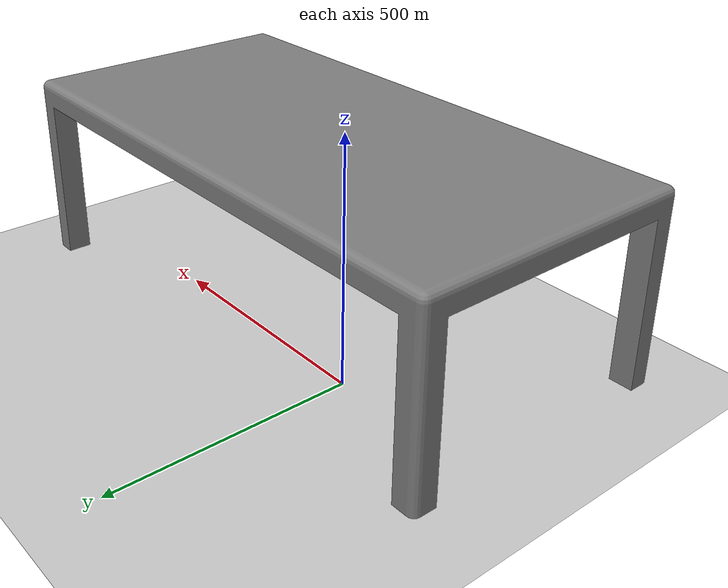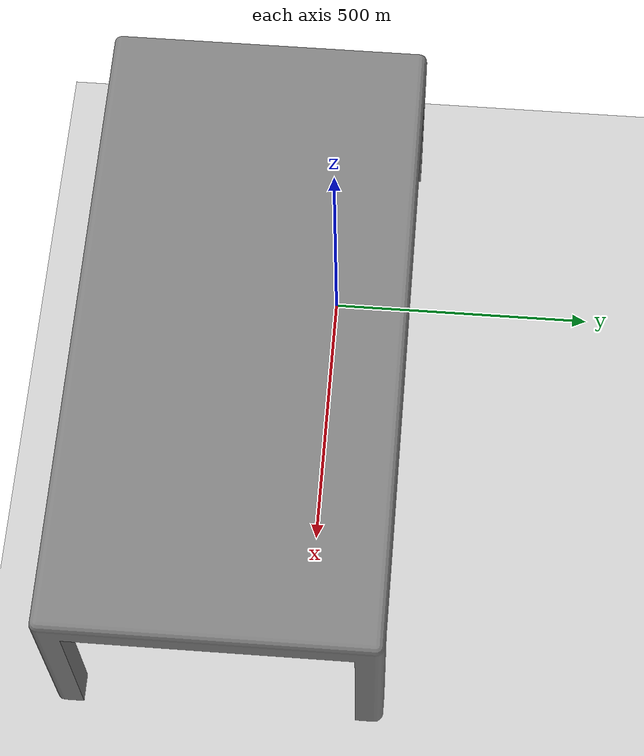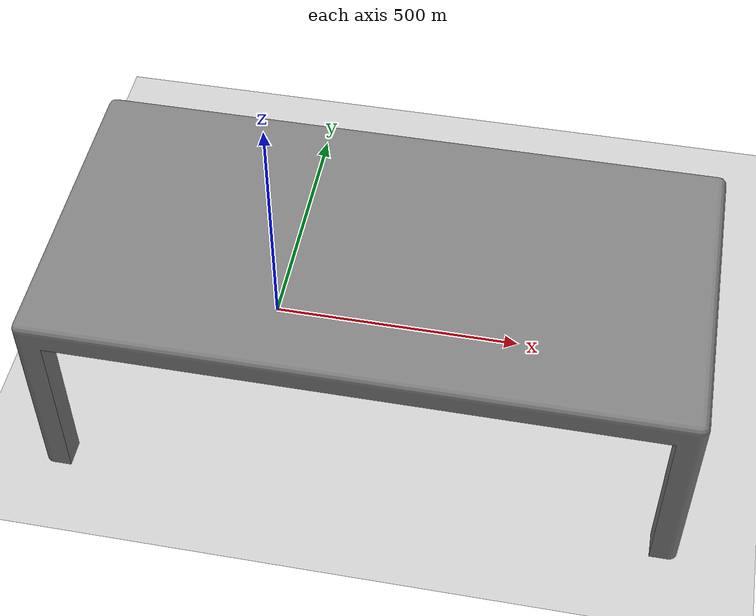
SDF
<?xml version="1.0" ?>
<sdf version="1.8">
    <world name='modifiedempty'>

        <plugin
            filename="libignition-gazebo-physics-system.so"
            name="ignition::gazebo::systems::Physics">
        </plugin>
        <plugin
            filename="libignition-gazebo-user-commands-system.so"
            name="ignition::gazebo::systems::UserCommands">
        </plugin>
        <plugin
            filename="libignition-gazebo-scene-broadcaster-system.so"
            name="ignition::gazebo::systems::SceneBroadcaster">
        </plugin>

        <scene>
            <ambient>0.4 0.4 0.4 1</ambient>
            <background>0.7 0.7 0.7 1</background>
            <sky>
                <clouds>
                    <speed>12</speed>
                    <direction>1.57</direction>
                    <humidity>0.5</humidity>
                </clouds>
                <ambient>0.6 0.8 1.0 1.0</ambient>
                <blue_horizon>0.8 0.9 1.0 1.0</blue_horizon>
                <blue_sky>0.5 0.7 0.9 1.0</blue_sky>
            </sky>
        </scene>

        <light type="directional" name="sun">
            <cast_shadows>true</cast_shadows>
            <pose>0 0 10 0 0 0</pose>
            <diffuse>0.8 0.8 0.8 1</diffuse>
            <specular>0.2 0.2 0.2 1</specular>
            <direction>-0.5 0.1 -0.9</direction>
        </light>

        <model name="ground_plane">
            <static>true</static>
            <link name="link">
                <collision name="collision">
                    <geometry>
                        <plane>
                            <normal>0 0 1</normal>
                            <size>100 100</size>
                        </plane>
                    </geometry>
                </collision>
                <visual name="visual">
                    <geometry>
                        <plane>
                            <normal>0 0 1</normal>
                            <size>100 100</size>
                        </plane>
                    </geometry>
                    <material>
                        <ambient>0.8 0.8 0.8 1</ambient>
                        <diffuse>0.8 0.8 0.8 1</diffuse>
                        <specular>0.8 0.8 0.8 1</specular>
                    </material>
                </visual>
            </link>
        </model>

        <model name="blue_cube">
            <pose>0 0.5 0.025 0 0 0</pose>
            <link name="link">
                <inertial>
                    <mass>0.1</mass>
                    <inertia>
                        <ixx>0.0000416</ixx>
                        <ixy>0</ixy>
                        <ixz>0</ixz>
                        <iyy>0.0000416</iyy>
                        <iyz>0</iyz>
                        <izz>0.0000416</izz>
                    </inertia>
                </inertial>
                <collision name="collision">
                    <geometry>
                        <box>
                            <size>0.05 0.05 0.05</size>
                        </box>
                    </geometry>
                </collision>
                <visual name="visual">
                    <geometry>
                        <box>
                            <size>0.05 0.05 0.05</size>
                        </box>
                    </geometry>
                    <material>
                        <ambient>0 0 1 1</ambient>
                        <diffuse>0 0 1 1</diffuse>
                    </material>
                </visual>
            </link>
        </model>

        <model name="my_static_object">
            <static>true</static>
            <pose>-1000 -2000 0 0 0 0</pose> <link name="link">
                <collision name="collision">
                    <geometry>
                        <mesh>
                            <uri>file:///home/keshav/cobot_ros2_ws/src/cobot_ros2/cobot_ros2/addverb_cobot_description/meshes/table.stl</uri>
                            <scale>1 1 1</scale>
                        </mesh>
                    </geometry>
                </collision>

                <visual name="visual">
                    <geometry>
                        <mesh>
                            <uri>file:///home/keshav/cobot_ros2_ws/src/cobot_ros2/cobot_ros2/addverb_cobot_description/meshes/table.stl</uri>
                            <scale>1 1 1</scale>
                        </mesh>
                    </geometry>
                    <material>
                        <ambient>0.5 0.5 0.5 1</ambient>
                        <diffuse>0.5 0.5 0.5 1</diffuse>
                    </material>
                </visual>
            </link>
        </model>
    </world>
</sdf>
